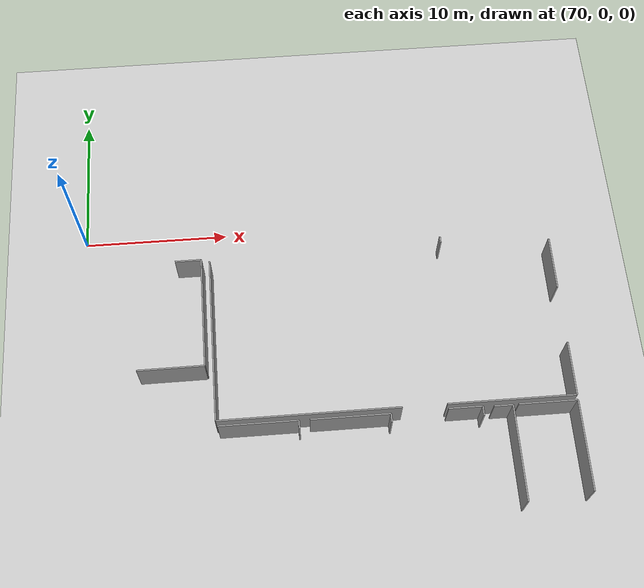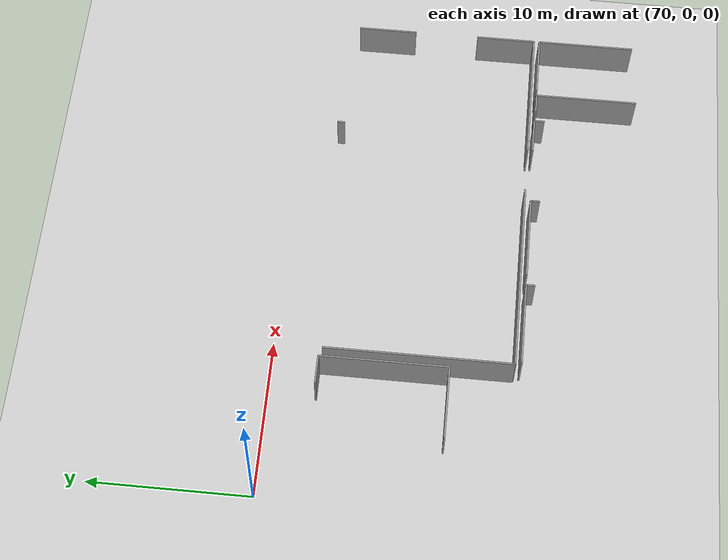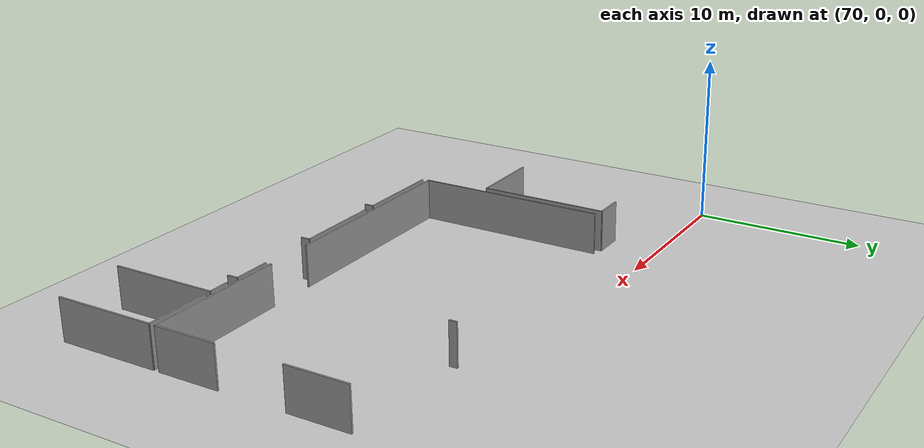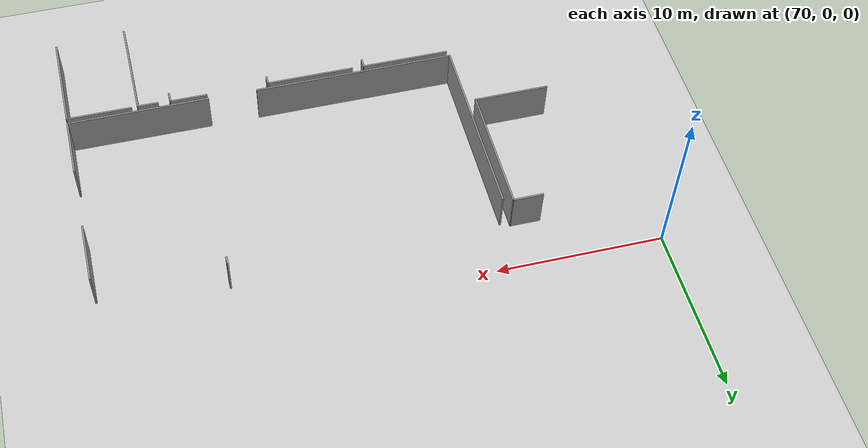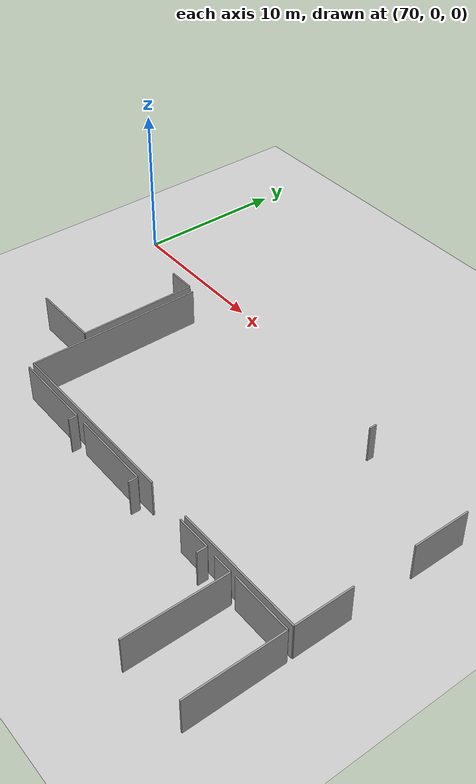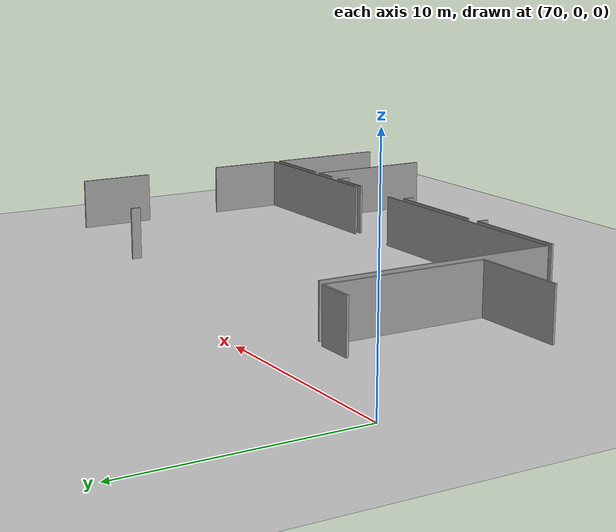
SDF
<sdf version="1.6">
 <world name="default">
  <model name="ground_plane">
   <static>1</static>
   <link name="link">
    <collision name="collision">
     <geometry><plane><normal>0 0 1</normal><size>100 100</size></plane></geometry>
     <surface><friction><ode><mu>100</mu><mu2>50</mu2></ode></friction></surface>
    </collision>
    <visual name="visual">
     <cast_shadows>0</cast_shadows>
     <geometry><plane><normal>0 0 1</normal><size>100 100</size></plane></geometry>
     <material>
      <script><uri>file://media/materials/scripts/gazebo.material</uri><name>Gazebo/Grey</name></script>
     </material>
    </visual>
   </link>
  </model>
  <model name="50010535_PLAN1">
   <static>1</static>
   <link name="Wall_722">
    <collision name="Wall_722_Collision">
     <geometry><box><size>1.8078435608 0.1 2.5</size></box></geometry>
     <pose>0.903921780398 0 1.25 0 0 0</pose>
    </collision>
    <visual name="Wall_722_Visual">
     <pose>0.903921780398 0 1.25 0 0 0</pose>
     <geometry><box><size>1.8078435608 0.1 2.5</size></box></geometry>
     <material>
      <script><uri>file://media/materials/scripts/gazebo.material</uri><name>Gazebo/Grey</name></script>
      <ambient>1 1 1 1</ambient>
     </material>
    </visual>
    <pose>179.10941977 -32.4771446542 0 0 0 0.0</pose>
   </link>
   <link name="Wall_723">
    <collision name="Wall_723_Collision">
     <geometry><box><size>7.84737266761 0.1 2.5</size></box></geometry>
     <pose>3.92368633381 0 1.25 0 0 0</pose>
    </collision>
    <visual name="Wall_723_Visual">
     <pose>3.92368633381 0 1.25 0 0 0</pose>
     <geometry><box><size>7.84737266761 0.1 2.5</size></box></geometry>
     <material>
      <script><uri>file://media/materials/scripts/gazebo.material</uri><name>Gazebo/Grey</name></script>
      <ambient>1 1 1 1</ambient>
     </material>
    </visual>
    <pose>180.91726333 -32.4771446542 0 0 0 -1.57079632679</pose>
   </link>
   <link name="Wall_724">
    <collision name="Wall_724_Collision">
     <geometry><box><size>4.52777484746 0.1 2.5</size></box></geometry>
     <pose>2.26388742373 0 1.25 0 0 0</pose>
    </collision>
    <visual name="Wall_724_Visual">
     <pose>2.26388742373 0 1.25 0 0 0</pose>
     <geometry><box><size>4.52777484746 0.1 2.5</size></box></geometry>
     <material>
      <script><uri>file://media/materials/scripts/gazebo.material</uri><name>Gazebo/Grey</name></script>
      <ambient>1 1 1 1</ambient>
     </material>
    </visual>
    <pose>180.91726333 -40.3245173218 0 0 0 -3.13771996711</pose>
   </link>
   <link name="Wall_725">
    <collision name="Wall_725_Collision">
     <geometry><box><size>3.90437285185 0.1 2.5</size></box></geometry>
     <pose>1.95218642593 0 1.25 0 0 0</pose>
    </collision>
    <visual name="Wall_725_Visual">
     <pose>1.95218642593 0 1.25 0 0 0</pose>
     <geometry><box><size>3.90437285185 0.1 2.5</size></box></geometry>
     <material>
      <script><uri>file://media/materials/scripts/gazebo.material</uri><name>Gazebo/Grey</name></script>
      <ambient>1 1 1 1</ambient>
     </material>
    </visual>
    <pose>201.253343329 -44.5338398887 0 0 0 0.0</pose>
   </link>
   <link name="Wall_726">
    <collision name="Wall_726_Collision">
     <geometry><box><size>6.09746955268 0.1 2.5</size></box></geometry>
     <pose>3.04873477634 0 1.25 0 0 0</pose>
    </collision>
    <visual name="Wall_726_Visual">
     <pose>3.04873477634 0 1.25 0 0 0</pose>
     <geometry><box><size>6.09746955268 0.1 2.5</size></box></geometry>
     <material>
      <script><uri>file://media/materials/scripts/gazebo.material</uri><name>Gazebo/Grey</name></script>
      <ambient>1 1 1 1</ambient>
     </material>
    </visual>
    <pose>205.157716181 -44.5338398887 0 0 0 -1.57079632679</pose>
   </link>
   <link name="Wall_733">
    <collision name="Wall_733_Collision">
     <geometry><box><size>5.28198318965 0.1 2.5</size></box></geometry>
     <pose>2.64099159482 0 1.25 0 0 0</pose>
    </collision>
    <visual name="Wall_733_Visual">
     <pose>2.64099159482 0 1.25 0 0 0</pose>
     <geometry><box><size>5.28198318965 0.1 2.5</size></box></geometry>
     <material>
      <script><uri>file://media/materials/scripts/gazebo.material</uri><name>Gazebo/Grey</name></script>
      <ambient>1 1 1 1</ambient>
     </material>
    </visual>
    <pose>181.600096567 -44.5691632307 0 0 0 0.0</pose>
   </link>
   <link name="Wall_734">
    <collision name="Wall_734_Collision">
     <geometry><box><size>0.551450734738 0.1 2.5</size></box></geometry>
     <pose>0.275725367369 0 1.25 0 0 0</pose>
    </collision>
    <visual name="Wall_734_Visual">
     <pose>0.275725367369 0 1.25 0 0 0</pose>
     <geometry><box><size>0.551450734738 0.1 2.5</size></box></geometry>
     <material>
      <script><uri>file://media/materials/scripts/gazebo.material</uri><name>Gazebo/Grey</name></script>
      <ambient>1 1 1 1</ambient>
     </material>
    </visual>
    <pose>186.882079757 -44.5691632307 0 0 0 -1.57079632679</pose>
   </link>
   <link name="Wall_737">
    <collision name="Wall_737_Collision">
     <geometry><box><size>5.29011518205 0.1 2.5</size></box></geometry>
     <pose>2.64505759102 0 1.25 0 0 0</pose>
    </collision>
    <visual name="Wall_737_Visual">
     <pose>2.64505759102 0 1.25 0 0 0</pose>
     <geometry><box><size>5.29011518205 0.1 2.5</size></box></geometry>
     <material>
      <script><uri>file://media/materials/scripts/gazebo.material</uri><name>Gazebo/Grey</name></script>
      <ambient>1 1 1 1</ambient>
     </material>
    </visual>
    <pose>187.592104344 -44.5635724859 0 0 0 0.0</pose>
   </link>
   <link name="Wall_738">
    <collision name="Wall_738_Collision">
     <geometry><box><size>0.562632224291 0.1 2.5</size></box></geometry>
     <pose>0.281316112145 0 1.25 0 0 0</pose>
    </collision>
    <visual name="Wall_738_Visual">
     <pose>0.281316112145 0 1.25 0 0 0</pose>
     <geometry><box><size>0.562632224291 0.1 2.5</size></box></geometry>
     <material>
      <script><uri>file://media/materials/scripts/gazebo.material</uri><name>Gazebo/Grey</name></script>
      <ambient>1 1 1 1</ambient>
     </material>
    </visual>
    <pose>192.882219526 -44.5635724859 0 0 0 -1.57079632679</pose>
   </link>
   <link name="Wall_741">
    <collision name="Wall_741_Collision">
     <geometry><box><size>2.24290515429 0.1 2.5</size></box></geometry>
     <pose>1.12145257714 0 1.25 0 0 0</pose>
    </collision>
    <visual name="Wall_741_Visual">
     <pose>1.12145257714 0 1.25 0 0 0</pose>
     <geometry><box><size>2.24290515429 0.1 2.5</size></box></geometry>
     <material>
      <script><uri>file://media/materials/scripts/gazebo.material</uri><name>Gazebo/Grey</name></script>
      <ambient>1 1 1 1</ambient>
     </material>
    </visual>
    <pose>196.659275871 -44.4977541724 0 0 0 0.0</pose>
   </link>
   <link name="Wall_742">
    <collision name="Wall_742_Collision">
     <geometry><box><size>0.650813516896 0.1 2.5</size></box></geometry>
     <pose>0.325406758448 0 1.25 0 0 0</pose>
    </collision>
    <visual name="Wall_742_Visual">
     <pose>0.325406758448 0 1.25 0 0 0</pose>
     <geometry><box><size>0.650813516896 0.1 2.5</size></box></geometry>
     <material>
      <script><uri>file://media/materials/scripts/gazebo.material</uri><name>Gazebo/Grey</name></script>
      <ambient>1 1 1 1</ambient>
     </material>
    </visual>
    <pose>198.902181026 -44.4977541724 0 0 0 -1.57079632679</pose>
   </link>
   <link name="Wall_745">
    <collision name="Wall_745_Collision">
     <geometry><box><size>1.25131033081 0.1 2.5</size></box></geometry>
     <pose>0.625655165403 0 1.25 0 0 0</pose>
    </collision>
    <visual name="Wall_745_Visual">
     <pose>0.625655165403 0 1.25 0 0 0</pose>
     <geometry><box><size>1.25131033081 0.1 2.5</size></box></geometry>
     <material>
      <script><uri>file://media/materials/scripts/gazebo.material</uri><name>Gazebo/Grey</name></script>
      <ambient>1 1 1 1</ambient>
     </material>
    </visual>
    <pose>199.635076841 -44.5539157449 0 0 0 0.0</pose>
   </link>
   <link name="Wall_746">
    <collision name="Wall_746_Collision">
     <geometry><box><size>6.41665025444 0.1 2.5</size></box></geometry>
     <pose>3.20832512722 0 1.25 0 0 0</pose>
    </collision>
    <visual name="Wall_746_Visual">
     <pose>3.20832512722 0 1.25 0 0 0</pose>
     <geometry><box><size>6.41665025444 0.1 2.5</size></box></geometry>
     <material>
      <script><uri>file://media/materials/scripts/gazebo.material</uri><name>Gazebo/Grey</name></script>
      <ambient>1 1 1 1</ambient>
     </material>
    </visual>
    <pose>200.886387172 -44.5539157449 0 0 0 -1.57079632679</pose>
   </link>
   <link name="Wall_751">
    <collision name="Wall_751_Collision">
     <geometry><box><size>11.5530199551 0.1 2.5</size></box></geometry>
     <pose>5.77650997757 0 1.25 0 0 0</pose>
    </collision>
    <visual name="Wall_751_Visual">
     <pose>5.77650997757 0 1.25 0 0 0</pose>
     <geometry><box><size>11.5530199551 0.1 2.5</size></box></geometry>
     <material>
      <script><uri>file://media/materials/scripts/gazebo.material</uri><name>Gazebo/Grey</name></script>
      <ambient>1 1 1 1</ambient>
     </material>
    </visual>
    <pose>181.49031467 -44.2014446993 0 0 0 1.57079632679</pose>
   </link>
   <link name="Wall_752">
    <collision name="Wall_752_Collision">
     <geometry><box><size>3.71911589995 0.1 2.5</size></box></geometry>
     <pose>1.85955794998 0 1.25 0 0 0</pose>
    </collision>
    <visual name="Wall_752_Visual">
     <pose>1.85955794998 0 1.25 0 0 0</pose>
     <geometry><box><size>3.71911589995 0.1 2.5</size></box></geometry>
     <material>
      <script><uri>file://media/materials/scripts/gazebo.material</uri><name>Gazebo/Grey</name></script>
      <ambient>1 1 1 1</ambient>
     </material>
    </visual>
    <pose>205.162798676 -32.6484247441 0 0 0 -1.57079632679</pose>
   </link>
   <link name="Wall_753">
    <collision name="Wall_753_Collision">
     <geometry><box><size>3.73334688665 0.1 2.5</size></box></geometry>
     <pose>1.86667344333 0 1.25 0 0 0</pose>
    </collision>
    <visual name="Wall_753_Visual">
     <pose>1.86667344333 0 1.25 0 0 0</pose>
     <geometry><box><size>3.73334688665 0.1 2.5</size></box></geometry>
     <material>
      <script><uri>file://media/materials/scripts/gazebo.material</uri><name>Gazebo/Grey</name></script>
      <ambient>1 1 1 1</ambient>
     </material>
    </visual>
    <pose>205.162798676 -40.4434477107 0 0 0 -1.57079632679</pose>
   </link>
   <link name="Wall_754">
    <collision name="Wall_754_Collision">
     <geometry><box><size>8.54494514082 0.1 2.5</size></box></geometry>
     <pose>4.27247257041 0 1.25 0 0 0</pose>
    </collision>
    <visual name="Wall_754_Visual">
     <pose>4.27247257041 0 1.25 0 0 0</pose>
     <geometry><box><size>8.54494514082 0.1 2.5</size></box></geometry>
     <material>
      <script><uri>file://media/materials/scripts/gazebo.material</uri><name>Gazebo/Grey</name></script>
      <ambient>1 1 1 1</ambient>
     </material>
    </visual>
    <pose>205.162798676 -44.1767945973 0 0 0 3.14159265359</pose>
   </link>
   <link name="Wall_755">
    <collision name="Wall_755_Collision">
     <geometry><box><size>12.1860696699 0.1 2.5</size></box></geometry>
     <pose>6.09303483496 0 1.25 0 0 0</pose>
    </collision>
    <visual name="Wall_755_Visual">
     <pose>6.09303483496 0 1.25 0 0 0</pose>
     <geometry><box><size>12.1860696699 0.1 2.5</size></box></geometry>
     <material>
      <script><uri>file://media/materials/scripts/gazebo.material</uri><name>Gazebo/Grey</name></script>
      <ambient>1 1 1 1</ambient>
     </material>
    </visual>
    <pose>193.676359409 -44.1767945973 0 0 0 -3.13956984234</pose>
   </link>
   <link name="Wall_761">
    <collision name="Wall_761_Collision">
     <geometry><box><size>0.466573064046 0.1 2.5</size></box></geometry>
     <pose>0.233286532023 0 1.25 0 0 0</pose>
    </collision>
    <visual name="Wall_761_Visual">
     <pose>0.233286532023 0 1.25 0 0 0</pose>
     <geometry><box><size>0.466573064046 0.1 2.5</size></box></geometry>
     <material>
      <script><uri>file://media/materials/scripts/gazebo.material</uri><name>Gazebo/Grey</name></script>
      <ambient>1 1 1 1</ambient>
     </material>
    </visual>
    <pose>197.611735482 -32.3793066206 0 0 0 1.57079632679</pose>
   </link>
   <pose>-102.6 29.5103111122 0 0 0 0</pose>
  </model>
 </world>
</sdf>
